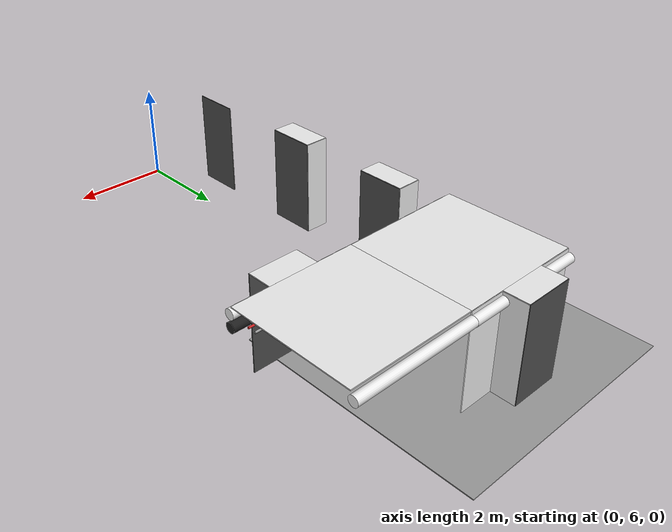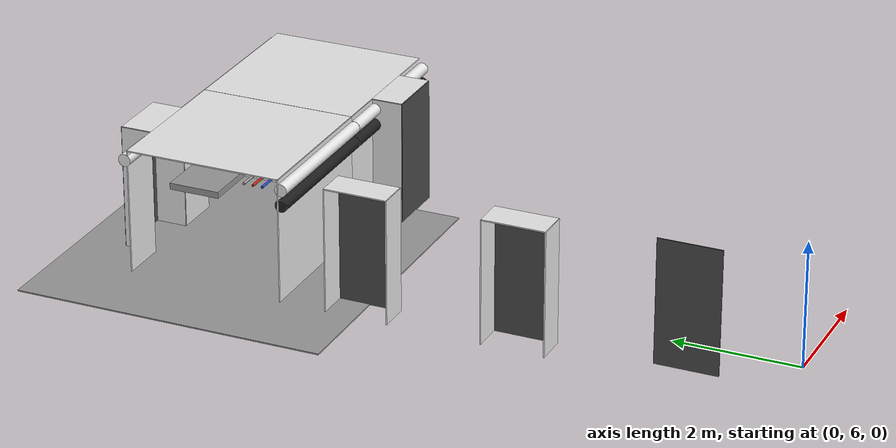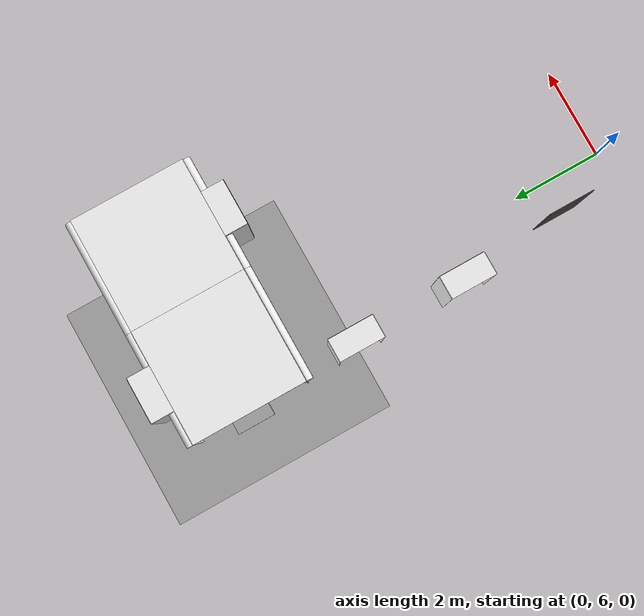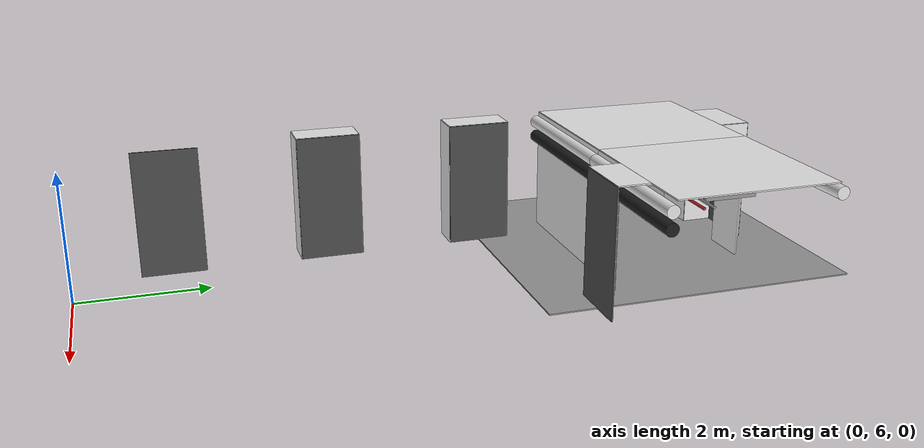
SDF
<sdf version="1.6">
 <world name="default">
  <model name="wall_right_inside_back_-1_3_0_1">
   <static>1</static>
   <pose>-0.75 7.5 1.0 0.0 0.0 1.57</pose>
   <link name="link">
    <collision name="collision"><geometry><box><size>1 0.02 2</size></box></geometry></collision>
    <visual name="visual">
     <material>
      <script><name>Gazebo/DarkGrey</name><uri>file://media/materials/scripts/gazebo.material</uri></script>
     </material>
     <geometry><box><size>1 0.02 2</size></box></geometry>
    </visual>
   </link>
  </model>
  <model name="wall_right_inside_back_-1_4_0_1">
   <static>1</static>
   <pose>-0.75 10.0 1.0 0.0 0.0 1.57</pose>
   <link name="link">
    <collision name="collision"><geometry><box><size>1 0.02 2</size></box></geometry></collision>
    <visual name="visual">
     <material>
      <script><name>Gazebo/DarkGrey</name><uri>file://media/materials/scripts/gazebo.material</uri></script>
     </material>
     <geometry><box><size>1 0.02 2</size></box></geometry>
    </visual>
   </link>
  </model>
  <model name="wall_right_inside_left_-1_4_0_1">
   <static>1</static>
   <pose>-1.0 10.5 1.0 0.0 0.0 0.0</pose>
   <link name="link">
    <collision name="collision"><geometry><box><size>0.5 0.02 2</size></box></geometry></collision>
    <visual name="visual">
     <material>
      <script><name>Gazebo/White</name><uri>file://media/materials/scripts/gazebo.material</uri></script>
     </material>
     <geometry><box><size>0.5 0.02 2</size></box></geometry>
    </visual>
   </link>
  </model>
  <model name="wall_right_inside_right_-1_4_0_1">
   <static>1</static>
   <pose>-1.0 9.5 1.0 0.0 0.0 0.0</pose>
   <link name="link">
    <collision name="collision"><geometry><box><size>0.5 0.02 2</size></box></geometry></collision>
    <visual name="visual">
     <material>
      <script><name>Gazebo/White</name><uri>file://media/materials/scripts/gazebo.material</uri></script>
     </material>
     <geometry><box><size>0.5 0.02 2</size></box></geometry>
    </visual>
   </link>
  </model>
  <model name="wall_right_inside_top_-1_4_0_1">
   <static>1</static>
   <pose>-1.0 10.0 2.0 1.57 0.0 1.57</pose>
   <link name="link">
    <collision name="collision"><geometry><box><size>1 0.02 0.5</size></box></geometry></collision>
    <visual name="visual">
     <material>
      <script><name>Gazebo/White</name><uri>file://media/materials/scripts/gazebo.material</uri></script>
     </material>
     <geometry><box><size>1 0.02 0.5</size></box></geometry>
    </visual>
   </link>
  </model>
  <model name="wall_right_inside_back_-1_5_0_1">
   <static>1</static>
   <pose>-0.75 12.5 1.0 0.0 0.0 1.57</pose>
   <link name="link">
    <collision name="collision"><geometry><box><size>1 0.02 2</size></box></geometry></collision>
    <visual name="visual">
     <material>
      <script><name>Gazebo/DarkGrey</name><uri>file://media/materials/scripts/gazebo.material</uri></script>
     </material>
     <geometry><box><size>1 0.02 2</size></box></geometry>
    </visual>
   </link>
  </model>
  <model name="wall_right_inside_left_-1_5_0_1">
   <static>1</static>
   <pose>-1.0 13.0 1.0 0.0 0.0 0.0</pose>
   <link name="link">
    <collision name="collision"><geometry><box><size>0.5 0.02 2</size></box></geometry></collision>
    <visual name="visual">
     <material>
      <script><name>Gazebo/White</name><uri>file://media/materials/scripts/gazebo.material</uri></script>
     </material>
     <geometry><box><size>0.5 0.02 2</size></box></geometry>
    </visual>
   </link>
  </model>
  <model name="wall_right_inside_right_-1_5_0_1">
   <static>1</static>
   <pose>-1.0 12.0 1.0 0.0 0.0 0.0</pose>
   <link name="link">
    <collision name="collision"><geometry><box><size>0.5 0.02 2</size></box></geometry></collision>
    <visual name="visual">
     <material>
      <script><name>Gazebo/White</name><uri>file://media/materials/scripts/gazebo.material</uri></script>
     </material>
     <geometry><box><size>0.5 0.02 2</size></box></geometry>
    </visual>
   </link>
  </model>
  <model name="wall_right_inside_top_-1_5_0_1">
   <static>1</static>
   <pose>-1.0 12.5 2.0 1.57 0.0 1.57</pose>
   <link name="link">
    <collision name="collision"><geometry><box><size>1 0.02 0.5</size></box></geometry></collision>
    <visual name="visual">
     <material>
      <script><name>Gazebo/White</name><uri>file://media/materials/scripts/gazebo.material</uri></script>
     </material>
     <geometry><box><size>1 0.02 0.5</size></box></geometry>
    </visual>
   </link>
  </model>
  <model name="wall_right_0_6_0_1">
   <static>1</static>
   <pose>0.0 13.75 1.0 0.0 0.0 0.0</pose>
   <link name="link">
    <collision name="collision"><geometry><box><size>2.5 0.02 2.0</size></box></geometry></collision>
    <visual name="visual">
     <material>
      <script><name>Gazebo/White</name><uri>file://media/materials/scripts/gazebo.material</uri></script>
     </material>
     <geometry><box><size>2.5 0.02 2.0</size></box></geometry>
    </visual>
   </link>
  </model>
  <model name="wall_top_0_6_0_1">
   <static>1</static>
   <pose>0.0 15.0 2.0 1.57 0.0 -1.57</pose>
   <link name="link">
    <collision name="collision"><geometry><box><size>2.5 0.02 2.5</size></box></geometry></collision>
    <visual name="visual">
     <material>
      <script><name>Gazebo/White</name><uri>file://media/materials/scripts/gazebo.material</uri></script>
     </material>
     <geometry><box><size>2.5 0.02 2.5</size></box></geometry>
    </visual>
   </link>
  </model>
  <model name="ceiling_1_0_6_0_1">
   <pose>0.0 15.0 1.7 0.0 0.0 -1.57</pose>
   <link name="link_1">
    <visual name="visual">
     <geometry><box><size>0.8 1 0.1</size></box></geometry>
     <material>
      <script><uri>file://media/materials/scripts/gazebo.material</uri><name>Gazebo/Grey</name></script>
     </material>
    </visual>
    <collision name="collision"><geometry><box><size>0.8 1 0.1</size></box></geometry></collision>
   </link>
   <static>1</static>
  </model>
  <model name="ceiling_1_0_6_1_1">
   <pose>-1.0 15.0 1.7 0.0 0.0 -1.57</pose>
   <link name="link_1">
    <visual name="visual">
     <geometry><box><size>0.8 1 0.1</size></box></geometry>
     <material>
      <script><uri>file://media/materials/scripts/gazebo.material</uri><name>Gazebo/Grey</name></script>
     </material>
    </visual>
    <collision name="collision"><geometry><box><size>0.8 1 0.1</size></box></geometry></collision>
   </link>
   <static>1</static>
  </model>
  <model name="ceiling_1_0_6_2_1">
   <pose>1.0 15.0 1.7 0.0 0.0 -1.57</pose>
   <link name="link_1">
    <visual name="visual">
     <geometry><box><size>0.8 1 0.1</size></box></geometry>
     <material>
      <script><uri>file://media/materials/scripts/gazebo.material</uri><name>Gazebo/Grey</name></script>
     </material>
    </visual>
    <collision name="collision"><geometry><box><size>0.8 1 0.1</size></box></geometry></collision>
   </link>
   <static>1</static>
  </model>
  <model name="white_pipe_left_0_6_0_1">
   <static>1</static>
   <pose>0.0 15.0 1.84 0.0 0.0 -1.57</pose>
   <link name="link_0">
    <visual name="visual">
     <pose>-1.3 0 0 1.57 0 0</pose>
     <geometry><cylinder><radius>0.1</radius><length>2.5</length></cylinder></geometry>
     <material>
      <script><uri>file://media/materials/scripts/gazebo.material</uri><name>Gazebo/White</name></script>
     </material>
    </visual>
    <collision name="collision">
     <pose>-1.3 0 0 1.57 0 0</pose>
     <geometry><cylinder><radius>0.1</radius><length>2.5</length></cylinder></geometry>
    </collision>
   </link>
  </model>
  <model name="white_pipe_right_0_6_0_1">
   <static>1</static>
   <pose>0.0 15.0 1.84 0.0 0.0 -1.57</pose>
   <link name="link_0">
    <visual name="visual">
     <pose>1.3 0 0 1.57 0 0</pose>
     <geometry><cylinder><radius>0.1</radius><length>2.5</length></cylinder></geometry>
     <material>
      <script><uri>file://media/materials/scripts/gazebo.material</uri><name>Gazebo/White</name></script>
     </material>
    </visual>
    <collision name="collision">
     <pose>1.3 0 0 1.57 0 0</pose>
     <geometry><cylinder><radius>0.1</radius><length>2.5</length></cylinder></geometry>
    </collision>
   </link>
  </model>
  <model name="black_pipe_right_0_6_0_1">
   <static>1</static>
   <pose>0.0 15.0 1.84 0.0 0.0 -1.57</pose>
   <link name="link_0">
    <visual name="visual">
     <pose>1.3 0 -0.25 1.57 0 0</pose>
     <geometry><cylinder><radius>0.1</radius><length>2.5</length></cylinder></geometry>
     <material>
      <script><uri>file://media/materials/scripts/gazebo.material</uri><name>Gazebo/Black</name></script>
     </material>
    </visual>
    <collision name="collision">
     <pose>1.3 0 -0.25 1.57 0 0</pose>
     <geometry><cylinder><radius>0.1</radius><length>2.5</length></cylinder></geometry>
    </collision>
   </link>
  </model>
  <model name="grey_pipe_right_0_6_0_1">
   <static>1</static>
   <pose>0.0 15.0 1.84 0.0 0.0 -1.57</pose>
   <link name="link_0">
    <visual name="visual">
     <pose>0.7 0 0 1.57 0 0</pose>
     <geometry><cylinder><radius>0.02</radius><length>2.5</length></cylinder></geometry>
     <material>
      <script><uri>file://media/materials/scripts/gazebo.material</uri><name>Gazebo/Grey</name></script>
     </material>
    </visual>
    <collision name="collision">
     <pose>0.7 0 0 1.57 0 0</pose>
     <geometry><cylinder><radius>0.02</radius><length>2.5</length></cylinder></geometry>
    </collision>
   </link>
  </model>
  <model name="red_pipe_right_0_6_0_1">
   <static>1</static>
   <pose>0.0 15.0 1.84 0.0 0.0 -1.57</pose>
   <link name="link_0">
    <visual name="visual">
     <pose>0.85 0 0 1.57 0 0</pose>
     <geometry><cylinder><radius>0.02</radius><length>2.5</length></cylinder></geometry>
     <material>
      <script><uri>file://media/materials/scripts/gazebo.material</uri><name>Gazebo/Red</name></script>
     </material>
    </visual>
    <collision name="collision">
     <pose>0.85 0 0 1.57 0 0</pose>
     <geometry><cylinder><radius>0.02</radius><length>2.5</length></cylinder></geometry>
    </collision>
   </link>
  </model>
  <model name="blue_pipe_right_0_6_0_1">
   <static>1</static>
   <pose>0.0 15.0 1.84 0.0 0.0 -1.57</pose>
   <link name="link_0">
    <visual name="visual">
     <pose>1 0 0 1.57 0 0</pose>
     <geometry><cylinder><radius>0.02</radius><length>2.5</length></cylinder></geometry>
     <material>
      <script><uri>file://media/materials/scripts/gazebo.material</uri><name>Gazebo/Blue</name></script>
     </material>
    </visual>
    <collision name="collision">
     <pose>1 0 0 1.57 0 0</pose>
     <geometry><cylinder><radius>0.02</radius><length>2.5</length></cylinder></geometry>
    </collision>
   </link>
  </model>
  <model name="wall_left_front_left_0_6_0_1">
   <static>1</static>
   <pose>0.875 16.25 1.0 0.0 0.0 0.0</pose>
   <link name="link">
    <collision name="collision"><geometry><box><size>0.75 0.02 2.0</size></box></geometry></collision>
    <visual name="visual">
     <material>
      <script><name>Gazebo/White</name><uri>file://media/materials/scripts/gazebo.material</uri></script>
     </material>
     <geometry><box><size>0.75 0.02 2.0</size></box></geometry>
    </visual>
   </link>
  </model>
  <model name="wall_left_front_right_0_6_0_1">
   <static>1</static>
   <pose>-0.875 16.25 1.0 0.0 0.0 0.0</pose>
   <link name="link">
    <collision name="collision"><geometry><box><size>0.75 0.02 2.0</size></box></geometry></collision>
    <visual name="visual">
     <material>
      <script><name>Gazebo/White</name><uri>file://media/materials/scripts/gazebo.material</uri></script>
     </material>
     <geometry><box><size>0.75 0.02 2.0</size></box></geometry>
    </visual>
   </link>
  </model>
  <model name="wall_left_front_up_0_6_0_1">
   <static>1</static>
   <pose>0.0 16.25 2.0 0.0 0.0 0.0</pose>
   <link name="link">
    <collision name="collision"><geometry><box><size>1.0 0.02 0.001</size></box></geometry></collision>
    <visual name="visual">
     <material>
      <script><name>Gazebo/White</name><uri>file://media/materials/scripts/gazebo.material</uri></script>
     </material>
     <geometry><box><size>1.0 0.02 0.001</size></box></geometry>
    </visual>
   </link>
  </model>
  <model name="wall_left_inside_back_0_6_0_1">
   <static>1</static>
   <pose>0.0 16.75 1.0 0.0 0.0 0.0</pose>
   <link name="link">
    <collision name="collision"><geometry><box><size>1 0.02 2</size></box></geometry></collision>
    <visual name="visual">
     <material>
      <script><name>Gazebo/DarkGrey</name><uri>file://media/materials/scripts/gazebo.material</uri></script>
     </material>
     <geometry><box><size>1 0.02 2</size></box></geometry>
    </visual>
   </link>
  </model>
  <model name="wall_left_inside_left_0_6_0_1">
   <static>1</static>
   <pose>0.5 16.5 1.0 0.0 0.0 -1.57</pose>
   <link name="link">
    <collision name="collision"><geometry><box><size>0.5 0.02 2</size></box></geometry></collision>
    <visual name="visual">
     <material>
      <script><name>Gazebo/White</name><uri>file://media/materials/scripts/gazebo.material</uri></script>
     </material>
     <geometry><box><size>0.5 0.02 2</size></box></geometry>
    </visual>
   </link>
  </model>
  <model name="wall_left_inside_right_0_6_0_1">
   <static>1</static>
   <pose>-0.5 16.5 1.0 0.0 0.0 -1.57</pose>
   <link name="link">
    <collision name="collision"><geometry><box><size>0.5 0.02 2</size></box></geometry></collision>
    <visual name="visual">
     <material>
      <script><name>Gazebo/White</name><uri>file://media/materials/scripts/gazebo.material</uri></script>
     </material>
     <geometry><box><size>0.5 0.02 2</size></box></geometry>
    </visual>
   </link>
  </model>
  <model name="wall_left_inside_top_0_6_0_1">
   <static>1</static>
   <pose>0.0 16.5 2.0 1.57 0.0 0.0</pose>
   <link name="link">
    <collision name="collision"><geometry><box><size>1 0.02 0.5</size></box></geometry></collision>
    <visual name="visual">
     <material>
      <script><name>Gazebo/White</name><uri>file://media/materials/scripts/gazebo.material</uri></script>
     </material>
     <geometry><box><size>1 0.02 0.5</size></box></geometry>
    </visual>
   </link>
  </model>
  <model name="wall_bottom_0_6_0_1">
   <static>1</static>
   <pose>0.0 15.0 0.0 0.0 0.0 -1.57</pose>
   <link name="link">
    <collision name="collision"><geometry><box><size>5.0 5.0 0.02</size></box></geometry></collision>
    <visual name="visual">
     <material>
      <script><name>Gazebo/Grey</name><uri>file://media/materials/scripts/gazebo.material</uri></script>
     </material>
     <geometry><box><size>5.0 5.0 0.02</size></box></geometry>
    </visual>
   </link>
  </model>
  <model name="wall_top_1_6_0_1">
   <static>1</static>
   <pose>2.5 15.0 2.0 1.57 0.0 -1.57</pose>
   <link name="link">
    <collision name="collision"><geometry><box><size>2.5 0.02 2.5</size></box></geometry></collision>
    <visual name="visual">
     <material>
      <script><name>Gazebo/White</name><uri>file://media/materials/scripts/gazebo.material</uri></script>
     </material>
     <geometry><box><size>2.5 0.02 2.5</size></box></geometry>
    </visual>
   </link>
  </model>
  <model name="ceiling_1_1_6_0_1">
   <pose>2.5 15.0 1.7 0.0 0.0 -1.57</pose>
   <link name="link_1">
    <visual name="visual">
     <geometry><box><size>0.8 1 0.1</size></box></geometry>
     <material>
      <script><uri>file://media/materials/scripts/gazebo.material</uri><name>Gazebo/Grey</name></script>
     </material>
    </visual>
    <collision name="collision"><geometry><box><size>0.8 1 0.1</size></box></geometry></collision>
   </link>
   <static>1</static>
  </model>
  <model name="ceiling_1_1_6_1_1">
   <pose>1.5 15.0 1.7 0.0 0.0 -1.57</pose>
   <link name="link_1">
    <visual name="visual">
     <geometry><box><size>0.8 1 0.1</size></box></geometry>
     <material>
      <script><uri>file://media/materials/scripts/gazebo.material</uri><name>Gazebo/Grey</name></script>
     </material>
    </visual>
    <collision name="collision"><geometry><box><size>0.8 1 0.1</size></box></geometry></collision>
   </link>
   <static>1</static>
  </model>
  <model name="white_pipe_left_1_6_0_1">
   <static>1</static>
   <pose>2.5 15.0 1.84 0.0 0.0 -1.57</pose>
   <link name="link_0">
    <visual name="visual">
     <pose>-1.3 0 0 1.57 0 0</pose>
     <geometry><cylinder><radius>0.1</radius><length>2.5</length></cylinder></geometry>
     <material>
      <script><uri>file://media/materials/scripts/gazebo.material</uri><name>Gazebo/White</name></script>
     </material>
    </visual>
    <collision name="collision">
     <pose>-1.3 0 0 1.57 0 0</pose>
     <geometry><cylinder><radius>0.1</radius><length>2.5</length></cylinder></geometry>
    </collision>
   </link>
  </model>
  <model name="white_pipe_right_1_6_0_1">
   <static>1</static>
   <pose>2.5 15.0 1.84 0.0 0.0 -1.57</pose>
   <link name="link_0">
    <visual name="visual">
     <pose>1.3 0 0 1.57 0 0</pose>
     <geometry><cylinder><radius>0.1</radius><length>2.5</length></cylinder></geometry>
     <material>
      <script><uri>file://media/materials/scripts/gazebo.material</uri><name>Gazebo/White</name></script>
     </material>
    </visual>
    <collision name="collision">
     <pose>1.3 0 0 1.57 0 0</pose>
     <geometry><cylinder><radius>0.1</radius><length>2.5</length></cylinder></geometry>
    </collision>
   </link>
  </model>
  <model name="black_pipe_right_1_6_0_1">
   <static>1</static>
   <pose>2.5 15.0 1.84 0.0 0.0 -1.57</pose>
   <link name="link_0">
    <visual name="visual">
     <pose>1.3 0 -0.25 1.57 0 0</pose>
     <geometry><cylinder><radius>0.1</radius><length>2.5</length></cylinder></geometry>
     <material>
      <script><uri>file://media/materials/scripts/gazebo.material</uri><name>Gazebo/Black</name></script>
     </material>
    </visual>
    <collision name="collision">
     <pose>1.3 0 -0.25 1.57 0 0</pose>
     <geometry><cylinder><radius>0.1</radius><length>2.5</length></cylinder></geometry>
    </collision>
   </link>
  </model>
  <model name="grey_pipe_right_1_6_0_1">
   <static>1</static>
   <pose>2.5 15.0 1.84 0.0 0.0 -1.57</pose>
   <link name="link_0">
    <visual name="visual">
     <pose>0.7 0 0 1.57 0 0</pose>
     <geometry><cylinder><radius>0.02</radius><length>2.5</length></cylinder></geometry>
     <material>
      <script><uri>file://media/materials/scripts/gazebo.material</uri><name>Gazebo/Grey</name></script>
     </material>
    </visual>
    <collision name="collision">
     <pose>0.7 0 0 1.57 0 0</pose>
     <geometry><cylinder><radius>0.02</radius><length>2.5</length></cylinder></geometry>
    </collision>
   </link>
  </model>
  <model name="red_pipe_right_1_6_0_1">
   <static>1</static>
   <pose>2.5 15.0 1.84 0.0 0.0 -1.57</pose>
   <link name="link_0">
    <visual name="visual">
     <pose>0.85 0 0 1.57 0 0</pose>
     <geometry><cylinder><radius>0.02</radius><length>2.5</length></cylinder></geometry>
     <material>
      <script><uri>file://media/materials/scripts/gazebo.material</uri><name>Gazebo/Red</name></script>
     </material>
    </visual>
    <collision name="collision">
     <pose>0.85 0 0 1.57 0 0</pose>
     <geometry><cylinder><radius>0.02</radius><length>2.5</length></cylinder></geometry>
    </collision>
   </link>
  </model>
  <model name="wall_right_front_right_1_6_0_1">
   <static>1</static>
   <pose>1.625 13.75 1.0 0.0 0.0 0.0</pose>
   <link name="link">
    <collision name="collision"><geometry><box><size>0.75 0.02 2.0</size></box></geometry></collision>
    <visual name="visual">
     <material>
      <script><name>Gazebo/White</name><uri>file://media/materials/scripts/gazebo.material</uri></script>
     </material>
     <geometry><box><size>0.75 0.02 2.0</size></box></geometry>
    </visual>
   </link>
  </model>
  <model name="wall_right_front_up_1_6_0_1">
   <static>1</static>
   <pose>2.5 13.75 2.0 0.0 0.0 0.0</pose>
   <link name="link">
    <collision name="collision"><geometry><box><size>1.0 0.02 0.001</size></box></geometry></collision>
    <visual name="visual">
     <material>
      <script><name>Gazebo/White</name><uri>file://media/materials/scripts/gazebo.material</uri></script>
     </material>
     <geometry><box><size>1.0 0.02 0.001</size></box></geometry>
    </visual>
   </link>
  </model>
  <model name="wall_right_inside_back_1_6_0_1">
   <static>1</static>
   <pose>2.5 13.25 1.0 0.0 0.0 0.0</pose>
   <link name="link">
    <collision name="collision"><geometry><box><size>1 0.02 2</size></box></geometry></collision>
    <visual name="visual">
     <material>
      <script><name>Gazebo/DarkGrey</name><uri>file://media/materials/scripts/gazebo.material</uri></script>
     </material>
     <geometry><box><size>1 0.02 2</size></box></geometry>
    </visual>
   </link>
  </model>
  <model name="wall_right_inside_right_1_6_0_1">
   <static>1</static>
   <pose>2.0 13.5 1.0 0.0 0.0 -1.57</pose>
   <link name="link">
    <collision name="collision"><geometry><box><size>0.5 0.02 2</size></box></geometry></collision>
    <visual name="visual">
     <material>
      <script><name>Gazebo/White</name><uri>file://media/materials/scripts/gazebo.material</uri></script>
     </material>
     <geometry><box><size>0.5 0.02 2</size></box></geometry>
    </visual>
   </link>
  </model>
  <model name="wall_right_inside_top_1_6_0_1">
   <static>1</static>
   <pose>2.5 13.5 2.0 1.57 0.0 0.0</pose>
   <link name="link">
    <collision name="collision"><geometry><box><size>1 0.02 0.5</size></box></geometry></collision>
    <visual name="visual">
     <material>
      <script><name>Gazebo/White</name><uri>file://media/materials/scripts/gazebo.material</uri></script>
     </material>
     <geometry><box><size>1 0.02 0.5</size></box></geometry>
    </visual>
   </link>
  </model>
 </world>
</sdf>
